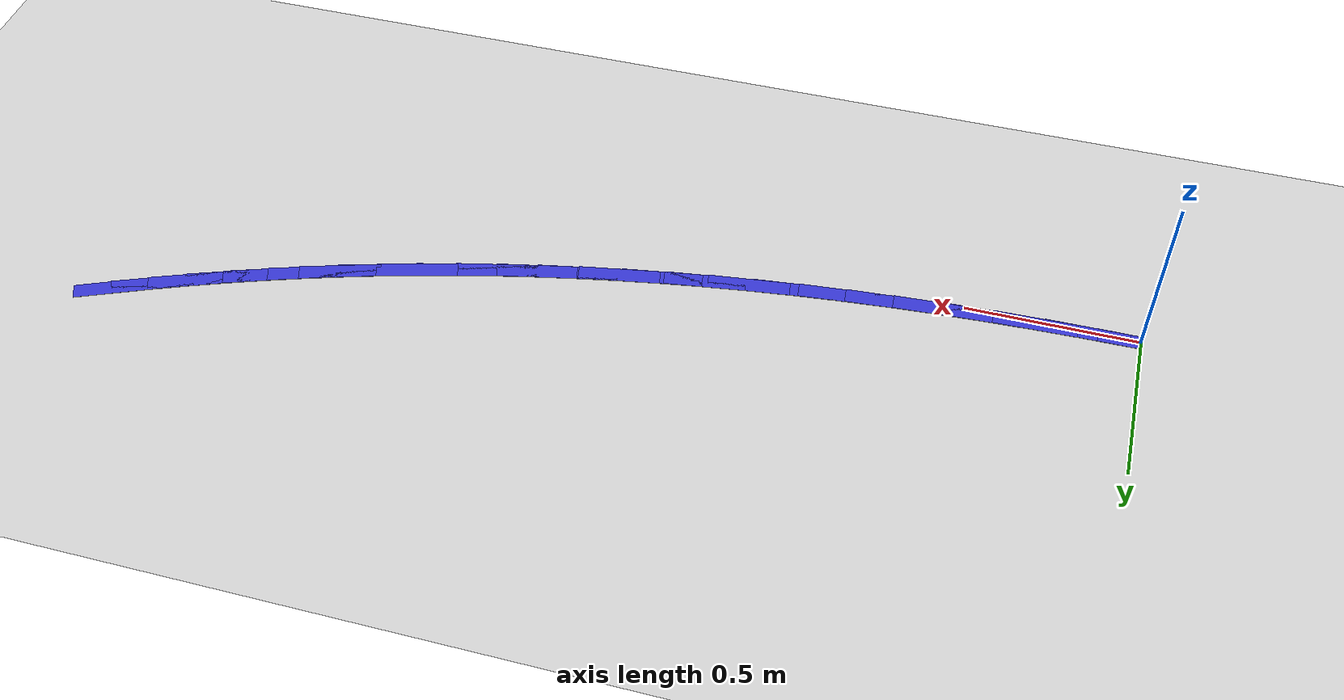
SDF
<sdf version="1.10">
 <world name="empty">
  <model name="ground_plane">
   <static>true</static>
   <link name="link">
    <collision name="collision">
     <geometry><plane><normal>0 0 1</normal><size>100 100</size></plane></geometry>
    </collision>
    <visual name="visual">
     <geometry><plane><normal>0 0 1</normal><size>100 100</size></plane></geometry>
     <material>
      <ambient>0.800000012 0.800000012 0.800000012 1</ambient>
      <diffuse>0.800000012 0.800000012 0.800000012 1</diffuse>
      <specular>0.800000012 0.800000012 0.800000012 1</specular>
     </material>
    </visual>
    <inertial>
     <mass>1</mass>
     <inertia><ixx>1</ixx><ixy>0</ixy><ixz>0</ixz><iyy>1</iyy><iyz>0</iyz><izz>1</izz></inertia>
    </inertial>
   </link>
  </model>
  <model name="unit_box_0">
   <link name="box_link">
    <collision name="box_collision">
     <geometry><box><size>0.000005 0.000005 0.000005</size></box></geometry>
    </collision>
    <visual name="box_visual">
     <geometry><box><size>0.12 0.05 0.0005</size></box></geometry>
     <material>
      <ambient>0.300000012 0.300000012 0.300000012 1</ambient>
      <diffuse>0.2 0.2 0.8 1</diffuse>
      <specular>1 1 1 1</specular>
     </material>
    </visual>
    <pose>0.06 0.0 0 0 0 0.0</pose>
   </link>
   <static>false</static>
  </model>
  <model name="unit_box_1">
   <link name="box_link">
    <collision name="box_collision">
     <geometry><box><size>0.000005 0.000005 0.000005</size></box></geometry>
    </collision>
    <visual name="box_visual">
     <geometry><box><size>0.24 0.05 0.0005</size></box></geometry>
     <material>
      <ambient>0.300000012 0.300000012 0.300000012 1</ambient>
      <diffuse>0.2 0.2 0.8 1</diffuse>
      <specular>1 1 1 1</specular>
     </material>
    </visual>
    <pose>0.1499950015407622 0.0012161199795114705 0 0 0 0.008107559056602417</pose>
   </link>
   <static>false</static>
  </model>
  <model name="unit_box_2">
   <link name="box_link">
    <collision name="box_collision">
     <geometry><box><size>0.000005 0.000005 0.000005</size></box></geometry>
    </collision>
    <visual name="box_visual">
     <geometry><box><size>0.24 0.05 0.0005</size></box></geometry>
     <material>
      <ambient>0.300000012 0.300000012 0.300000012 1</ambient>
      <diffuse>0.2 0.2 0.8 1</diffuse>
      <specular>1 1 1 1</specular>
     </material>
    </visual>
    <pose>0.29699092753883083 0.004831500393177774 0 0 0 0.024590148667046275</pose>
   </link>
   <static>false</static>
  </model>
  <model name="unit_box_3">
   <link name="box_link">
    <collision name="box_collision">
     <geometry><box><size>0.000005 0.000005 0.000005</size></box></geometry>
    </collision>
    <visual name="box_visual">
     <geometry><box><size>0.24 0.05 0.0005</size></box></geometry>
     <material>
      <ambient>0.300000012 0.300000012 0.300000012 1</ambient>
      <diffuse>0.2 0.2 0.8 1</diffuse>
      <specular>1 1 1 1</specular>
     </material>
    </visual>
    <pose>0.4410496146033337 0.010796671953696747 0 0 0 0.04138428482263463</pose>
   </link>
   <static>false</static>
  </model>
  <model name="unit_box_4">
   <link name="box_link">
    <collision name="box_collision">
     <geometry><box><size>0.000005 0.000005 0.000005</size></box></geometry>
    </collision>
    <visual name="box_visual">
     <geometry><box><size>0.24 0.05 0.0005</size></box></geometry>
     <material>
      <ambient>0.300000012 0.300000012 0.300000012 1</ambient>
      <diffuse>0.2 0.2 0.8 1</diffuse>
      <specular>1 1 1 1</specular>
     </material>
    </visual>
    <pose>0.5822328993433984 0.019062165373766232 0 0 0 0.058477670509446376</pose>
   </link>
   <static>false</static>
  </model>
  <model name="unit_box_5">
   <link name="box_link">
    <collision name="box_collision">
     <geometry><box><size>0.000005 0.000005 0.000005</size></box></geometry>
    </collision>
    <visual name="box_visual">
     <geometry><box><size>0.24 0.05 0.0005</size></box></geometry>
     <material>
      <ambient>0.300000012 0.300000012 0.300000012 1</ambient>
      <diffuse>0.2 0.2 0.8 1</diffuse>
      <specular>1 1 1 1</specular>
     </material>
    </visual>
    <pose>0.7206026183681526 0.029578511366084064 0 0 0 0.07585595699928427</pose>
   </link>
   <static>false</static>
  </model>
  <model name="unit_box_6">
   <link name="box_link">
    <collision name="box_collision">
     <geometry><box><size>0.000005 0.000005 0.000005</size></box></geometry>
    </collision>
    <visual name="box_visual">
     <geometry><box><size>0.24 0.05 0.0005</size></box></geometry>
     <material>
      <ambient>0.300000012 0.300000012 0.300000012 1</ambient>
      <diffuse>0.2 0.2 0.8 1</diffuse>
      <specular>1 1 1 1</specular>
     </material>
    </visual>
    <pose>0.8562206082867242 0.04229624064334808 0 0 0 0.0935026763067745</pose>
   </link>
   <static>false</static>
  </model>
  <model name="unit_box_7">
   <link name="box_link">
    <collision name="box_collision">
     <geometry><box><size>0.000005 0.000005 0.000005</size></box></geometry>
    </collision>
    <visual name="box_visual">
     <geometry><box><size>0.24 0.05 0.0005</size></box></geometry>
     <material>
      <ambient>0.300000012 0.300000012 0.300000012 1</ambient>
      <diffuse>0.2 0.2 0.8 1</diffuse>
      <specular>1 1 1 1</specular>
     </material>
    </visual>
    <pose>0.9891487057082403 0.05716588391825612 0 0 0 0.11139919209406075</pose>
   </link>
   <static>false</static>
  </model>
  <model name="unit_box_8">
   <link name="box_link">
    <collision name="box_collision">
     <geometry><box><size>0.000005 0.000005 0.000005</size></box></geometry>
    </collision>
    <visual name="box_visual">
     <geometry><box><size>0.24 0.05 0.0005</size></box></geometry>
     <material>
      <ambient>0.300000012 0.300000012 0.300000012 1</ambient>
      <diffuse>0.2 0.2 0.8 1</diffuse>
      <specular>1 1 1 1</specular>
     </material>
    </visual>
    <pose>1.1194487472418297 0.07413797190350604 0 0 0 0.12952467185254574</pose>
   </link>
   <static>false</static>
  </model>
  <model name="unit_box_9">
   <link name="box_link">
    <collision name="box_collision">
     <geometry><box><size>0.000005 0.000005 0.000005</size></box></geometry>
    </collision>
    <visual name="box_visual">
     <geometry><box><size>0.24 0.05 0.0005</size></box></geometry>
     <material>
      <ambient>0.300000012 0.300000012 0.300000012 1</ambient>
      <diffuse>0.2 0.2 0.8 1</diffuse>
      <specular>1 1 1 1</specular>
     </material>
    </visual>
    <pose>1.247182569496619 0.09316303531179564 0 0 0 0.14785608298010453</pose>
   </link>
   <static>false</static>
  </model>
  <model name="unit_box_10">
   <link name="box_link">
    <collision name="box_collision">
     <geometry><box><size>0.000005 0.000005 0.000005</size></box></geometry>
    </collision>
    <visual name="box_visual">
     <geometry><box><size>0.24 0.05 0.0005</size></box></geometry>
     <material>
      <ambient>0.300000012 0.300000012 0.300000012 1</ambient>
      <diffuse>0.2 0.2 0.8 1</diffuse>
      <specular>1 1 1 1</specular>
     </material>
    </visual>
    <pose>1.3724120090817367 0.11419160485582279 0 0 0 0.16636821504002</pose>
   </link>
   <static>false</static>
  </model>
  <model name="unit_box_11">
   <link name="box_link">
    <collision name="box_collision">
     <geometry><box><size>0.000005 0.000005 0.000005</size></box></geometry>
    </collision>
    <visual name="box_visual">
     <geometry><box><size>0.24 0.05 0.0005</size></box></geometry>
     <material>
      <ambient>0.300000012 0.300000012 0.300000012 1</ambient>
      <diffuse>0.2 0.2 0.8 1</diffuse>
      <specular>1 1 1 1</specular>
     </material>
    </visual>
    <pose>1.4951989026063097 0.1371742112482853 0 0 0 0.18503373003178222</pose>
   </link>
   <static>false</static>
  </model>
  <model name="unit_box_12">
   <link name="box_link">
    <collision name="box_collision">
     <geometry><box><size>0.000005 0.000005 0.000005</size></box></geometry>
    </collision>
    <visual name="box_visual">
     <geometry><box><size>0.24 0.05 0.0005</size></box></geometry>
     <material>
      <ambient>0.300000012 0.300000012 0.300000012 1</ambient>
      <diffuse>0.2 0.2 0.8 1</diffuse>
      <specular>1 1 1 1</specular>
     </material>
    </visual>
    <pose>1.615605086679467 0.16206138520188107 0 0 0 0.2038232419275935</pose>
   </link>
   <static>false</static>
  </model>
  <model name="unit_box_13">
   <link name="box_link">
    <collision name="box_collision">
     <geometry><box><size>0.000005 0.000005 0.000005</size></box></geometry>
    </collision>
    <visual name="box_visual">
     <geometry><box><size>0.24 0.05 0.0005</size></box></geometry>
     <material>
      <ambient>0.300000012 0.300000012 0.300000012 1</ambient>
      <diffuse>0.2 0.2 0.8 1</diffuse>
      <specular>1 1 1 1</specular>
     </material>
    </visual>
    <pose>1.7336923979103354 0.18880365742930794 0 0 0 0.22270542604355534</pose>
   </link>
   <static>false</static>
  </model>
  <model name="unit_box_14">
   <link name="box_link">
    <collision name="box_collision">
     <geometry><box><size>0.000005 0.000005 0.000005</size></box></geometry>
    </collision>
    <visual name="box_visual">
     <geometry><box><size>0.24 0.05 0.0005</size></box></geometry>
     <material>
      <ambient>0.300000012 0.300000012 0.300000012 1</ambient>
      <diffuse>0.2 0.2 0.8 1</diffuse>
      <specular>1 1 1 1</specular>
     </material>
    </visual>
    <pose>1.8495226729080412 0.21735155864326353 0 0 0 0.24164715804040357</pose>
   </link>
   <static>false</static>
  </model>
  <model name="unit_box_15">
   <link name="box_link">
    <collision name="box_collision">
     <geometry><box><size>0.000005 0.000005 0.000005</size></box></geometry>
    </collision>
    <visual name="box_visual">
     <geometry><box><size>0.24 0.05 0.0005</size></box></geometry>
     <material>
      <ambient>0.300000012 0.300000012 0.300000012 1</ambient>
      <diffuse>0.2 0.2 0.8 1</diffuse>
      <specular>1 1 1 1</specular>
     </material>
    </visual>
    <pose>1.9631577482817155 0.24765561955644602 0 0 0 0.26061368151271525</pose>
   </link>
   <static>false</static>
  </model>
  <model name="unit_box_16">
   <link name="box_link">
    <collision name="box_collision">
     <geometry><box><size>0.000005 0.000005 0.000005</size></box></geometry>
    </collision>
    <visual name="box_visual">
     <geometry><box><size>0.24 0.05 0.0005</size></box></geometry>
     <material>
      <ambient>0.300000012 0.300000012 0.300000012 1</ambient>
      <diffuse>0.2 0.2 0.8 1</diffuse>
      <specular>1 1 1 1</specular>
     </material>
    </visual>
    <pose>2.0746594606404827 0.27966637088155305 0 0 0 0.27956880226170633</pose>
   </link>
   <static>false</static>
  </model>
  <model name="unit_box_17">
   <link name="box_link">
    <collision name="box_collision">
     <geometry><box><size>0.000005 0.000005 0.000005</size></box></geometry>
    </collision>
    <visual name="box_visual">
     <geometry><box><size>0.24 0.05 0.0005</size></box></geometry>
     <material>
      <ambient>0.300000012 0.300000012 0.300000012 1</ambient>
      <diffuse>0.2 0.2 0.8 1</diffuse>
      <specular>1 1 1 1</specular>
     </material>
    </visual>
    <pose>2.1840896465934727 0.3133343433312824 0 0 0 0.29847510649412506</pose>
   </link>
   <static>false</static>
  </model>
  <model name="unit_box_18">
   <link name="box_link">
    <collision name="box_collision">
     <geometry><box><size>0.000005 0.000005 0.000005</size></box></geometry>
    </collision>
    <visual name="box_visual">
     <geometry><box><size>0.24 0.05 0.0005</size></box></geometry>
     <material>
      <ambient>0.300000012 0.300000012 0.300000012 1</ambient>
      <diffuse>0.2 0.2 0.8 1</diffuse>
      <specular>1 1 1 1</specular>
     </material>
    </visual>
    <pose>2.2915101427498112 0.348610067618332 0 0 0 0.31729419939076314</pose>
   </link>
   <static>false</static>
  </model>
  <model name="unit_box_19">
   <link name="box_link">
    <collision name="box_collision">
     <geometry><box><size>0.000005 0.000005 0.000005</size></box></geometry>
    </collision>
    <visual name="box_visual">
     <geometry><box><size>0.24 0.05 0.0005</size></box></geometry>
     <material>
      <ambient>0.300000012 0.300000012 0.300000012 1</ambient>
      <diffuse>0.2 0.2 0.8 1</diffuse>
      <specular>1 1 1 1</specular>
     </material>
    </visual>
    <pose>2.3969827857186283 0.38544407445539974 0 0 0 0.33598695978376614</pose>
   </link>
   <static>false</static>
  </model>
  <model name="unit_box_20">
   <link name="box_link">
    <collision name="box_collision">
     <geometry><box><size>0.000005 0.000005 0.000005</size></box></geometry>
    </collision>
    <visual name="box_visual">
     <geometry><box><size>0.24 0.05 0.0005</size></box></geometry>
     <material>
      <ambient>0.300000012 0.300000012 0.300000012 1</ambient>
      <diffuse>0.2 0.2 0.8 1</diffuse>
      <specular>1 1 1 1</specular>
     </material>
    </visual>
    <pose>2.500569412109051 0.42378689455518354 0 0 0 0.3545138061122166</pose>
   </link>
   <static>false</static>
  </model>
  <model name="unit_box_21">
   <link name="box_link">
    <collision name="box_collision">
     <geometry><box><size>0.000005 0.000005 0.000005</size></box></geometry>
    </collision>
    <visual name="box_visual">
     <geometry><box><size>0.24 0.05 0.0005</size></box></geometry>
     <material>
      <ambient>0.300000012 0.300000012 0.300000012 1</ambient>
      <diffuse>0.2 0.2 0.8 1</diffuse>
      <specular>1 1 1 1</specular>
     </material>
    </visual>
    <pose>2.6023318585302055 0.463589058630381 0 0 0 0.3728349684215813</pose>
   </link>
   <static>false</static>
  </model>
  <model name="unit_box_22">
   <link name="box_link">
    <collision name="box_collision">
     <geometry><box><size>0.000005 0.000005 0.000005</size></box></geometry>
    </collision>
    <visual name="box_visual">
     <geometry><box><size>0.24 0.05 0.0005</size></box></geometry>
     <material>
      <ambient>0.300000012 0.300000012 0.300000012 1</ambient>
      <diffuse>0.2 0.2 0.8 1</diffuse>
      <specular>1 1 1 1</specular>
     </material>
    </visual>
    <pose>2.702331961591221 0.50480109739369 0 0 0 0.3909107609597008</pose>
   </link>
   <static>false</static>
  </model>
  <model name="unit_box_23">
   <link name="box_link">
    <collision name="box_collision">
     <geometry><box><size>0.000005 0.000005 0.000005</size></box></geometry>
    </collision>
    <visual name="box_visual">
     <geometry><box><size>0.24 0.05 0.0005</size></box></geometry>
     <material>
      <ambient>0.300000012 0.300000012 0.300000012 1</ambient>
      <diffuse>0.2 0.2 0.8 1</diffuse>
      <specular>1 1 1 1</specular>
     </material>
    </visual>
    <pose>2.800631557901225 0.5473735415578085 0 0 0 0.40870184991191016</pose>
   </link>
   <static>false</static>
  </model>
  <model name="unit_box_24">
   <link name="box_link">
    <collision name="box_collision">
     <geometry><box><size>0.000005 0.000005 0.000005</size></box></geometry>
    </collision>
    <visual name="box_visual">
     <geometry><box><size>0.24 0.05 0.0005</size></box></geometry>
     <material>
      <ambient>0.300000012 0.300000012 0.300000012 1</ambient>
      <diffuse>0.2 0.2 0.8 1</diffuse>
      <specular>1 1 1 1</specular>
     </material>
    </visual>
    <pose>2.8972924840693435 0.5912569218354342 0 0 0 0.4261695110121677</pose>
   </link>
   <static>false</static>
  </model>
 </world>
</sdf>
